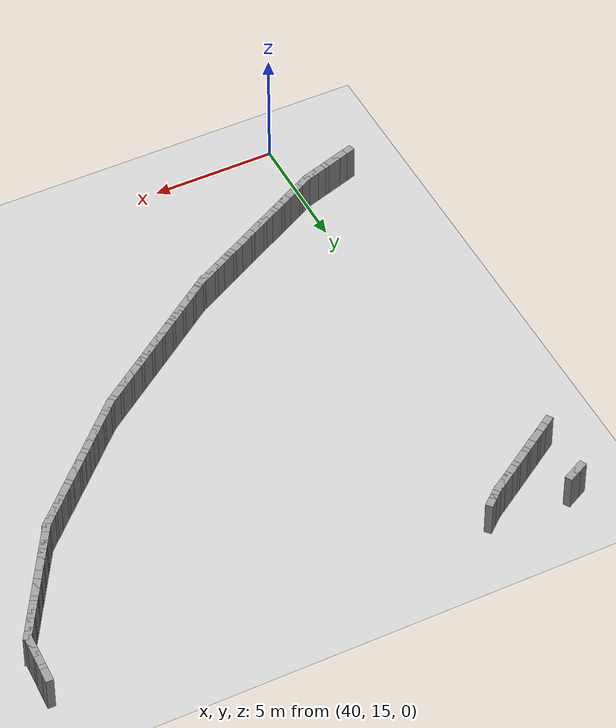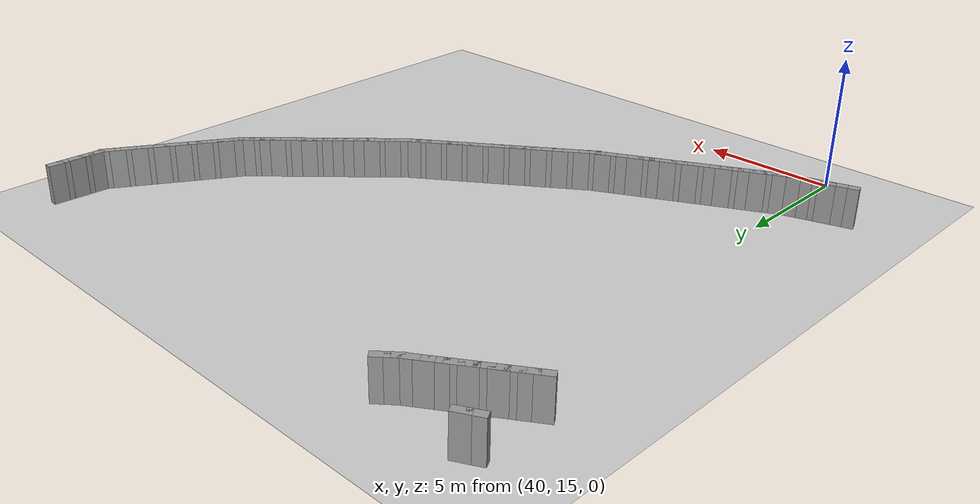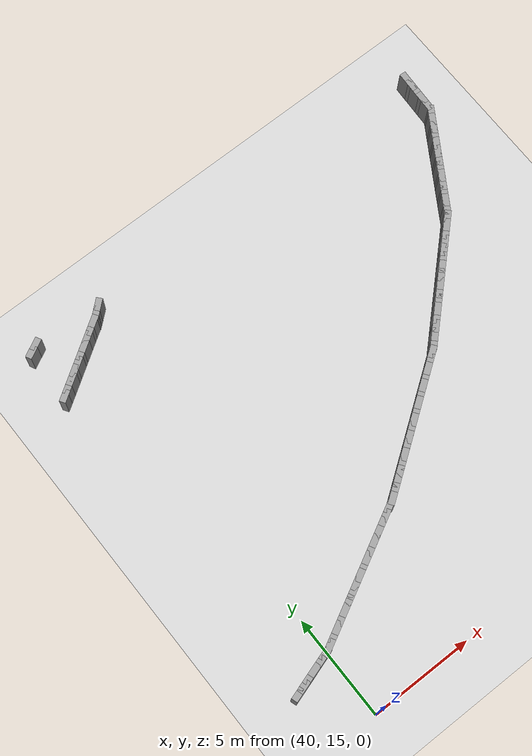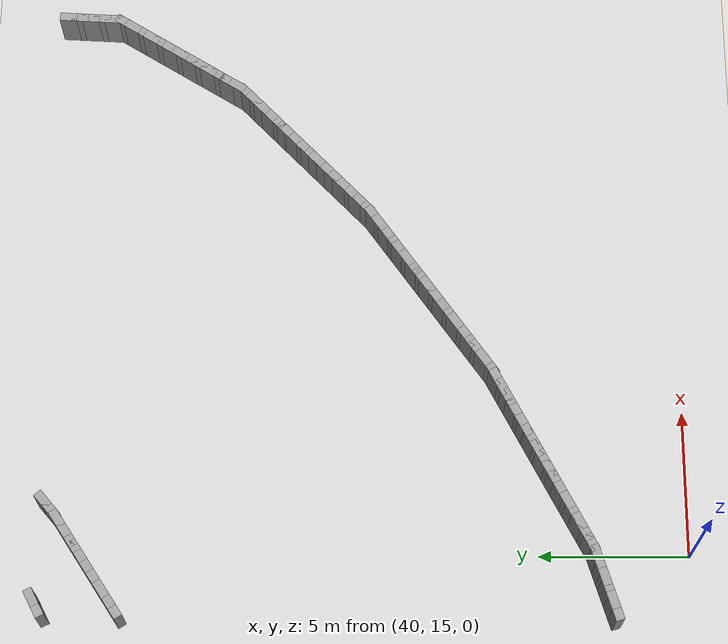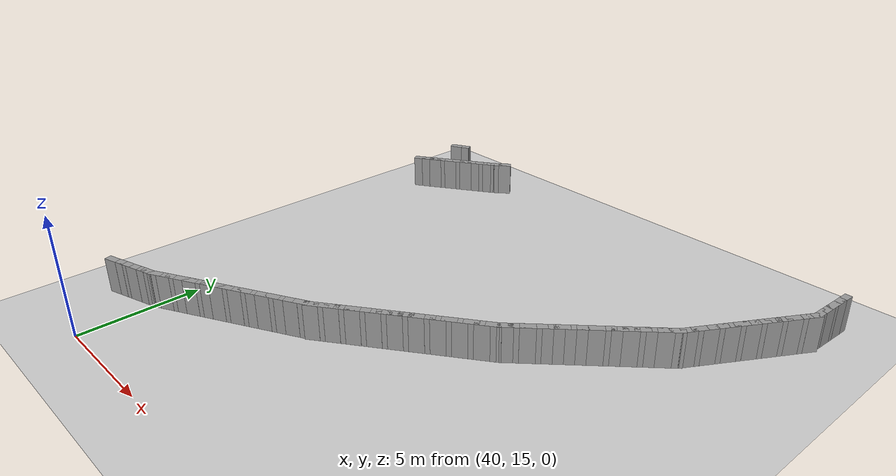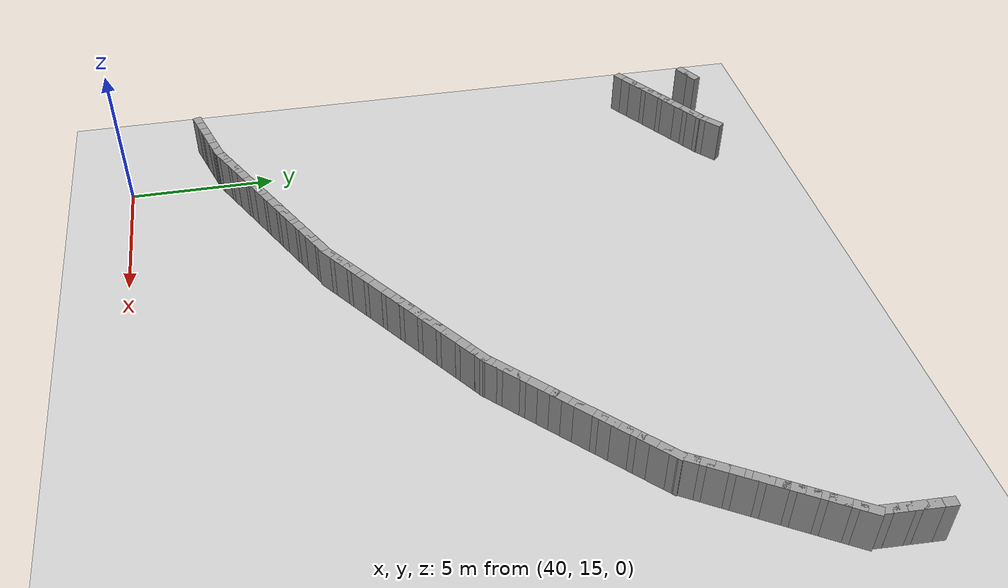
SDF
<sdf version="1.5">
 <world name="test_l_shape">
  <include><uri>model://sun</uri></include>
  <include><uri>model://ground_plane</uri></include>
  <model name="curbL_181">
   <static>true</static>
   <pose>37.872 17.605 0.750 0 0 0.304</pose>
   <link name="link">
    <collision name="col"><geometry><box><size>0.600 0.300 1.500</size></box></geometry></collision>
    <visual name="vis">
     <geometry><box><size>0.600 0.300 1.500</size></box></geometry>
     <material><ambient>0.6 0.6 0.6 1</ambient><diffuse>0.6 0.6 0.6 1</diffuse></material>
    </visual>
   </link>
  </model>
  <model name="curbL_182">
   <static>true</static>
   <pose>38.254 17.725 0.750 0 0 0.304</pose>
   <link name="link">
    <collision name="col"><geometry><box><size>0.600 0.300 1.500</size></box></geometry></collision>
    <visual name="vis">
     <geometry><box><size>0.600 0.300 1.500</size></box></geometry>
     <material><ambient>0.6 0.6 0.6 1</ambient><diffuse>0.6 0.6 0.6 1</diffuse></material>
    </visual>
   </link>
  </model>
  <model name="curbL_183">
   <static>true</static>
   <pose>38.635 17.845 0.750 0 0 0.304</pose>
   <link name="link">
    <collision name="col"><geometry><box><size>0.600 0.300 1.500</size></box></geometry></collision>
    <visual name="vis">
     <geometry><box><size>0.600 0.300 1.500</size></box></geometry>
     <material><ambient>0.6 0.6 0.6 1</ambient><diffuse>0.6 0.6 0.6 1</diffuse></material>
    </visual>
   </link>
  </model>
  <model name="curbL_184">
   <static>true</static>
   <pose>39.017 17.964 0.750 0 0 0.304</pose>
   <link name="link">
    <collision name="col"><geometry><box><size>0.600 0.300 1.500</size></box></geometry></collision>
    <visual name="vis">
     <geometry><box><size>0.600 0.300 1.500</size></box></geometry>
     <material><ambient>0.6 0.6 0.6 1</ambient><diffuse>0.6 0.6 0.6 1</diffuse></material>
    </visual>
   </link>
  </model>
  <model name="curbL_185">
   <static>true</static>
   <pose>39.399 18.084 0.750 0 0 0.304</pose>
   <link name="link">
    <collision name="col"><geometry><box><size>0.600 0.300 1.500</size></box></geometry></collision>
    <visual name="vis">
     <geometry><box><size>0.600 0.300 1.500</size></box></geometry>
     <material><ambient>0.6 0.6 0.6 1</ambient><diffuse>0.6 0.6 0.6 1</diffuse></material>
    </visual>
   </link>
  </model>
  <model name="curbL_186">
   <static>true</static>
   <pose>39.780 18.204 0.750 0 0 0.304</pose>
   <link name="link">
    <collision name="col"><geometry><box><size>0.600 0.300 1.500</size></box></geometry></collision>
    <visual name="vis">
     <geometry><box><size>0.600 0.300 1.500</size></box></geometry>
     <material><ambient>0.6 0.6 0.6 1</ambient><diffuse>0.6 0.6 0.6 1</diffuse></material>
    </visual>
   </link>
  </model>
  <model name="curbL_187">
   <static>true</static>
   <pose>40.149 18.356 0.750 0 0 0.485</pose>
   <link name="link">
    <collision name="col"><geometry><box><size>0.600 0.300 1.500</size></box></geometry></collision>
    <visual name="vis">
     <geometry><box><size>0.600 0.300 1.500</size></box></geometry>
     <material><ambient>0.6 0.6 0.6 1</ambient><diffuse>0.6 0.6 0.6 1</diffuse></material>
    </visual>
   </link>
  </model>
  <model name="curbL_188">
   <static>true</static>
   <pose>40.503 18.542 0.750 0 0 0.485</pose>
   <link name="link">
    <collision name="col"><geometry><box><size>0.600 0.300 1.500</size></box></geometry></collision>
    <visual name="vis">
     <geometry><box><size>0.600 0.300 1.500</size></box></geometry>
     <material><ambient>0.6 0.6 0.6 1</ambient><diffuse>0.6 0.6 0.6 1</diffuse></material>
    </visual>
   </link>
  </model>
  <model name="curbL_189">
   <static>true</static>
   <pose>40.856 18.729 0.750 0 0 0.485</pose>
   <link name="link">
    <collision name="col"><geometry><box><size>0.600 0.300 1.500</size></box></geometry></collision>
    <visual name="vis">
     <geometry><box><size>0.600 0.300 1.500</size></box></geometry>
     <material><ambient>0.6 0.6 0.6 1</ambient><diffuse>0.6 0.6 0.6 1</diffuse></material>
    </visual>
   </link>
  </model>
  <model name="curbL_190">
   <static>true</static>
   <pose>41.210 18.915 0.750 0 0 0.485</pose>
   <link name="link">
    <collision name="col"><geometry><box><size>0.600 0.300 1.500</size></box></geometry></collision>
    <visual name="vis">
     <geometry><box><size>0.600 0.300 1.500</size></box></geometry>
     <material><ambient>0.6 0.6 0.6 1</ambient><diffuse>0.6 0.6 0.6 1</diffuse></material>
    </visual>
   </link>
  </model>
  <model name="curbL_191">
   <static>true</static>
   <pose>41.564 19.101 0.750 0 0 0.485</pose>
   <link name="link">
    <collision name="col"><geometry><box><size>0.600 0.300 1.500</size></box></geometry></collision>
    <visual name="vis">
     <geometry><box><size>0.600 0.300 1.500</size></box></geometry>
     <material><ambient>0.6 0.6 0.6 1</ambient><diffuse>0.6 0.6 0.6 1</diffuse></material>
    </visual>
   </link>
  </model>
  <model name="curbL_192">
   <static>true</static>
   <pose>41.918 19.288 0.750 0 0 0.485</pose>
   <link name="link">
    <collision name="col"><geometry><box><size>0.600 0.300 1.500</size></box></geometry></collision>
    <visual name="vis">
     <geometry><box><size>0.600 0.300 1.500</size></box></geometry>
     <material><ambient>0.6 0.6 0.6 1</ambient><diffuse>0.6 0.6 0.6 1</diffuse></material>
    </visual>
   </link>
  </model>
  <model name="curbL_193">
   <static>true</static>
   <pose>42.272 19.474 0.750 0 0 0.485</pose>
   <link name="link">
    <collision name="col"><geometry><box><size>0.600 0.300 1.500</size></box></geometry></collision>
    <visual name="vis">
     <geometry><box><size>0.600 0.300 1.500</size></box></geometry>
     <material><ambient>0.6 0.6 0.6 1</ambient><diffuse>0.6 0.6 0.6 1</diffuse></material>
    </visual>
   </link>
  </model>
  <model name="curbL_194">
   <static>true</static>
   <pose>42.626 19.660 0.750 0 0 0.485</pose>
   <link name="link">
    <collision name="col"><geometry><box><size>0.600 0.300 1.500</size></box></geometry></collision>
    <visual name="vis">
     <geometry><box><size>0.600 0.300 1.500</size></box></geometry>
     <material><ambient>0.6 0.6 0.6 1</ambient><diffuse>0.6 0.6 0.6 1</diffuse></material>
    </visual>
   </link>
  </model>
  <model name="curbL_195">
   <static>true</static>
   <pose>42.980 19.847 0.750 0 0 0.485</pose>
   <link name="link">
    <collision name="col"><geometry><box><size>0.600 0.300 1.500</size></box></geometry></collision>
    <visual name="vis">
     <geometry><box><size>0.600 0.300 1.500</size></box></geometry>
     <material><ambient>0.6 0.6 0.6 1</ambient><diffuse>0.6 0.6 0.6 1</diffuse></material>
    </visual>
   </link>
  </model>
  <model name="curbL_196">
   <static>true</static>
   <pose>43.334 20.033 0.750 0 0 0.485</pose>
   <link name="link">
    <collision name="col"><geometry><box><size>0.600 0.300 1.500</size></box></geometry></collision>
    <visual name="vis">
     <geometry><box><size>0.600 0.300 1.500</size></box></geometry>
     <material><ambient>0.6 0.6 0.6 1</ambient><diffuse>0.6 0.6 0.6 1</diffuse></material>
    </visual>
   </link>
  </model>
  <model name="curbL_197">
   <static>true</static>
   <pose>43.688 20.220 0.750 0 0 0.485</pose>
   <link name="link">
    <collision name="col"><geometry><box><size>0.600 0.300 1.500</size></box></geometry></collision>
    <visual name="vis">
     <geometry><box><size>0.600 0.300 1.500</size></box></geometry>
     <material><ambient>0.6 0.6 0.6 1</ambient><diffuse>0.6 0.6 0.6 1</diffuse></material>
    </visual>
   </link>
  </model>
  <model name="curbL_198">
   <static>true</static>
   <pose>44.042 20.406 0.750 0 0 0.485</pose>
   <link name="link">
    <collision name="col"><geometry><box><size>0.600 0.300 1.500</size></box></geometry></collision>
    <visual name="vis">
     <geometry><box><size>0.600 0.300 1.500</size></box></geometry>
     <material><ambient>0.6 0.6 0.6 1</ambient><diffuse>0.6 0.6 0.6 1</diffuse></material>
    </visual>
   </link>
  </model>
  <model name="curbL_199">
   <static>true</static>
   <pose>44.396 20.592 0.750 0 0 0.485</pose>
   <link name="link">
    <collision name="col"><geometry><box><size>0.600 0.300 1.500</size></box></geometry></collision>
    <visual name="vis">
     <geometry><box><size>0.600 0.300 1.500</size></box></geometry>
     <material><ambient>0.6 0.6 0.6 1</ambient><diffuse>0.6 0.6 0.6 1</diffuse></material>
    </visual>
   </link>
  </model>
  <model name="curbL_200">
   <static>true</static>
   <pose>44.750 20.779 0.750 0 0 0.485</pose>
   <link name="link">
    <collision name="col"><geometry><box><size>0.600 0.300 1.500</size></box></geometry></collision>
    <visual name="vis">
     <geometry><box><size>0.600 0.300 1.500</size></box></geometry>
     <material><ambient>0.6 0.6 0.6 1</ambient><diffuse>0.6 0.6 0.6 1</diffuse></material>
    </visual>
   </link>
  </model>
  <model name="curbL_201">
   <static>true</static>
   <pose>45.104 20.965 0.750 0 0 0.485</pose>
   <link name="link">
    <collision name="col"><geometry><box><size>0.600 0.300 1.500</size></box></geometry></collision>
    <visual name="vis">
     <geometry><box><size>0.600 0.300 1.500</size></box></geometry>
     <material><ambient>0.6 0.6 0.6 1</ambient><diffuse>0.6 0.6 0.6 1</diffuse></material>
    </visual>
   </link>
  </model>
  <model name="curbL_202">
   <static>true</static>
   <pose>45.458 21.151 0.750 0 0 0.485</pose>
   <link name="link">
    <collision name="col"><geometry><box><size>0.600 0.300 1.500</size></box></geometry></collision>
    <visual name="vis">
     <geometry><box><size>0.600 0.300 1.500</size></box></geometry>
     <material><ambient>0.6 0.6 0.6 1</ambient><diffuse>0.6 0.6 0.6 1</diffuse></material>
    </visual>
   </link>
  </model>
  <model name="curbL_203">
   <static>true</static>
   <pose>45.811 21.338 0.750 0 0 0.485</pose>
   <link name="link">
    <collision name="col"><geometry><box><size>0.600 0.300 1.500</size></box></geometry></collision>
    <visual name="vis">
     <geometry><box><size>0.600 0.300 1.500</size></box></geometry>
     <material><ambient>0.6 0.6 0.6 1</ambient><diffuse>0.6 0.6 0.6 1</diffuse></material>
    </visual>
   </link>
  </model>
  <model name="curbL_204">
   <static>true</static>
   <pose>46.165 21.525 0.750 0 0 0.620</pose>
   <link name="link">
    <collision name="col"><geometry><box><size>0.600 0.300 1.500</size></box></geometry></collision>
    <visual name="vis">
     <geometry><box><size>0.600 0.300 1.500</size></box></geometry>
     <material><ambient>0.6 0.6 0.6 1</ambient><diffuse>0.6 0.6 0.6 1</diffuse></material>
    </visual>
   </link>
  </model>
  <model name="curbL_205">
   <static>true</static>
   <pose>46.490 21.758 0.750 0 0 0.620</pose>
   <link name="link">
    <collision name="col"><geometry><box><size>0.600 0.300 1.500</size></box></geometry></collision>
    <visual name="vis">
     <geometry><box><size>0.600 0.300 1.500</size></box></geometry>
     <material><ambient>0.6 0.6 0.6 1</ambient><diffuse>0.6 0.6 0.6 1</diffuse></material>
    </visual>
   </link>
  </model>
  <model name="curbL_206">
   <static>true</static>
   <pose>46.816 21.990 0.750 0 0 0.620</pose>
   <link name="link">
    <collision name="col"><geometry><box><size>0.600 0.300 1.500</size></box></geometry></collision>
    <visual name="vis">
     <geometry><box><size>0.600 0.300 1.500</size></box></geometry>
     <material><ambient>0.6 0.6 0.6 1</ambient><diffuse>0.6 0.6 0.6 1</diffuse></material>
    </visual>
   </link>
  </model>
  <model name="curbL_207">
   <static>true</static>
   <pose>47.141 22.223 0.750 0 0 0.620</pose>
   <link name="link">
    <collision name="col"><geometry><box><size>0.600 0.300 1.500</size></box></geometry></collision>
    <visual name="vis">
     <geometry><box><size>0.600 0.300 1.500</size></box></geometry>
     <material><ambient>0.6 0.6 0.6 1</ambient><diffuse>0.6 0.6 0.6 1</diffuse></material>
    </visual>
   </link>
  </model>
  <model name="curbL_208">
   <static>true</static>
   <pose>47.467 22.455 0.750 0 0 0.620</pose>
   <link name="link">
    <collision name="col"><geometry><box><size>0.600 0.300 1.500</size></box></geometry></collision>
    <visual name="vis">
     <geometry><box><size>0.600 0.300 1.500</size></box></geometry>
     <material><ambient>0.6 0.6 0.6 1</ambient><diffuse>0.6 0.6 0.6 1</diffuse></material>
    </visual>
   </link>
  </model>
  <model name="curbL_209">
   <static>true</static>
   <pose>47.792 22.688 0.750 0 0 0.620</pose>
   <link name="link">
    <collision name="col"><geometry><box><size>0.600 0.300 1.500</size></box></geometry></collision>
    <visual name="vis">
     <geometry><box><size>0.600 0.300 1.500</size></box></geometry>
     <material><ambient>0.6 0.6 0.6 1</ambient><diffuse>0.6 0.6 0.6 1</diffuse></material>
    </visual>
   </link>
  </model>
  <model name="curbL_210">
   <static>true</static>
   <pose>48.118 22.920 0.750 0 0 0.620</pose>
   <link name="link">
    <collision name="col"><geometry><box><size>0.600 0.300 1.500</size></box></geometry></collision>
    <visual name="vis">
     <geometry><box><size>0.600 0.300 1.500</size></box></geometry>
     <material><ambient>0.6 0.6 0.6 1</ambient><diffuse>0.6 0.6 0.6 1</diffuse></material>
    </visual>
   </link>
  </model>
  <model name="curbL_211">
   <static>true</static>
   <pose>48.443 23.153 0.750 0 0 0.620</pose>
   <link name="link">
    <collision name="col"><geometry><box><size>0.600 0.300 1.500</size></box></geometry></collision>
    <visual name="vis">
     <geometry><box><size>0.600 0.300 1.500</size></box></geometry>
     <material><ambient>0.6 0.6 0.6 1</ambient><diffuse>0.6 0.6 0.6 1</diffuse></material>
    </visual>
   </link>
  </model>
  <model name="curbL_212">
   <static>true</static>
   <pose>48.769 23.385 0.750 0 0 0.620</pose>
   <link name="link">
    <collision name="col"><geometry><box><size>0.600 0.300 1.500</size></box></geometry></collision>
    <visual name="vis">
     <geometry><box><size>0.600 0.300 1.500</size></box></geometry>
     <material><ambient>0.6 0.6 0.6 1</ambient><diffuse>0.6 0.6 0.6 1</diffuse></material>
    </visual>
   </link>
  </model>
  <model name="curbL_213">
   <static>true</static>
   <pose>49.094 23.618 0.750 0 0 0.620</pose>
   <link name="link">
    <collision name="col"><geometry><box><size>0.600 0.300 1.500</size></box></geometry></collision>
    <visual name="vis">
     <geometry><box><size>0.600 0.300 1.500</size></box></geometry>
     <material><ambient>0.6 0.6 0.6 1</ambient><diffuse>0.6 0.6 0.6 1</diffuse></material>
    </visual>
   </link>
  </model>
  <model name="curbL_214">
   <static>true</static>
   <pose>49.420 23.850 0.750 0 0 0.620</pose>
   <link name="link">
    <collision name="col"><geometry><box><size>0.600 0.300 1.500</size></box></geometry></collision>
    <visual name="vis">
     <geometry><box><size>0.600 0.300 1.500</size></box></geometry>
     <material><ambient>0.6 0.6 0.6 1</ambient><diffuse>0.6 0.6 0.6 1</diffuse></material>
    </visual>
   </link>
  </model>
  <model name="curbL_215">
   <static>true</static>
   <pose>49.745 24.083 0.750 0 0 0.620</pose>
   <link name="link">
    <collision name="col"><geometry><box><size>0.600 0.300 1.500</size></box></geometry></collision>
    <visual name="vis">
     <geometry><box><size>0.600 0.300 1.500</size></box></geometry>
     <material><ambient>0.6 0.6 0.6 1</ambient><diffuse>0.6 0.6 0.6 1</diffuse></material>
    </visual>
   </link>
  </model>
  <model name="curbL_216">
   <static>true</static>
   <pose>50.071 24.315 0.750 0 0 0.620</pose>
   <link name="link">
    <collision name="col"><geometry><box><size>0.600 0.300 1.500</size></box></geometry></collision>
    <visual name="vis">
     <geometry><box><size>0.600 0.300 1.500</size></box></geometry>
     <material><ambient>0.6 0.6 0.6 1</ambient><diffuse>0.6 0.6 0.6 1</diffuse></material>
    </visual>
   </link>
  </model>
  <model name="curbL_217">
   <static>true</static>
   <pose>50.396 24.548 0.750 0 0 0.620</pose>
   <link name="link">
    <collision name="col"><geometry><box><size>0.600 0.300 1.500</size></box></geometry></collision>
    <visual name="vis">
     <geometry><box><size>0.600 0.300 1.500</size></box></geometry>
     <material><ambient>0.6 0.6 0.6 1</ambient><diffuse>0.6 0.6 0.6 1</diffuse></material>
    </visual>
   </link>
  </model>
  <model name="curbL_218">
   <static>true</static>
   <pose>50.722 24.780 0.750 0 0 0.620</pose>
   <link name="link">
    <collision name="col"><geometry><box><size>0.600 0.300 1.500</size></box></geometry></collision>
    <visual name="vis">
     <geometry><box><size>0.600 0.300 1.500</size></box></geometry>
     <material><ambient>0.6 0.6 0.6 1</ambient><diffuse>0.6 0.6 0.6 1</diffuse></material>
    </visual>
   </link>
  </model>
  <model name="curbL_219">
   <static>true</static>
   <pose>51.047 25.013 0.750 0 0 0.620</pose>
   <link name="link">
    <collision name="col"><geometry><box><size>0.600 0.300 1.500</size></box></geometry></collision>
    <visual name="vis">
     <geometry><box><size>0.600 0.300 1.500</size></box></geometry>
     <material><ambient>0.6 0.6 0.6 1</ambient><diffuse>0.6 0.6 0.6 1</diffuse></material>
    </visual>
   </link>
  </model>
  <model name="curbL_220">
   <static>true</static>
   <pose>51.373 25.245 0.750 0 0 0.620</pose>
   <link name="link">
    <collision name="col"><geometry><box><size>0.600 0.300 1.500</size></box></geometry></collision>
    <visual name="vis">
     <geometry><box><size>0.600 0.300 1.500</size></box></geometry>
     <material><ambient>0.6 0.6 0.6 1</ambient><diffuse>0.6 0.6 0.6 1</diffuse></material>
    </visual>
   </link>
  </model>
  <model name="curbL_221">
   <static>true</static>
   <pose>51.698 25.478 0.750 0 0 0.620</pose>
   <link name="link">
    <collision name="col"><geometry><box><size>0.600 0.300 1.500</size></box></geometry></collision>
    <visual name="vis">
     <geometry><box><size>0.600 0.300 1.500</size></box></geometry>
     <material><ambient>0.6 0.6 0.6 1</ambient><diffuse>0.6 0.6 0.6 1</diffuse></material>
    </visual>
   </link>
  </model>
  <model name="curbL_222">
   <static>true</static>
   <pose>52.005 25.732 0.750 0 0 0.770</pose>
   <link name="link">
    <collision name="col"><geometry><box><size>0.600 0.300 1.500</size></box></geometry></collision>
    <visual name="vis">
     <geometry><box><size>0.600 0.300 1.500</size></box></geometry>
     <material><ambient>0.6 0.6 0.6 1</ambient><diffuse>0.6 0.6 0.6 1</diffuse></material>
    </visual>
   </link>
  </model>
  <model name="curbL_223">
   <static>true</static>
   <pose>52.292 26.011 0.750 0 0 0.770</pose>
   <link name="link">
    <collision name="col"><geometry><box><size>0.600 0.300 1.500</size></box></geometry></collision>
    <visual name="vis">
     <geometry><box><size>0.600 0.300 1.500</size></box></geometry>
     <material><ambient>0.6 0.6 0.6 1</ambient><diffuse>0.6 0.6 0.6 1</diffuse></material>
    </visual>
   </link>
  </model>
  <model name="curbL_224">
   <static>true</static>
   <pose>52.580 26.289 0.750 0 0 0.770</pose>
   <link name="link">
    <collision name="col"><geometry><box><size>0.600 0.300 1.500</size></box></geometry></collision>
    <visual name="vis">
     <geometry><box><size>0.600 0.300 1.500</size></box></geometry>
     <material><ambient>0.6 0.6 0.6 1</ambient><diffuse>0.6 0.6 0.6 1</diffuse></material>
    </visual>
   </link>
  </model>
  <model name="curbL_225">
   <static>true</static>
   <pose>52.867 26.568 0.750 0 0 0.770</pose>
   <link name="link">
    <collision name="col"><geometry><box><size>0.600 0.300 1.500</size></box></geometry></collision>
    <visual name="vis">
     <geometry><box><size>0.600 0.300 1.500</size></box></geometry>
     <material><ambient>0.6 0.6 0.6 1</ambient><diffuse>0.6 0.6 0.6 1</diffuse></material>
    </visual>
   </link>
  </model>
  <model name="curbL_226">
   <static>true</static>
   <pose>53.154 26.846 0.750 0 0 0.770</pose>
   <link name="link">
    <collision name="col"><geometry><box><size>0.600 0.300 1.500</size></box></geometry></collision>
    <visual name="vis">
     <geometry><box><size>0.600 0.300 1.500</size></box></geometry>
     <material><ambient>0.6 0.6 0.6 1</ambient><diffuse>0.6 0.6 0.6 1</diffuse></material>
    </visual>
   </link>
  </model>
  <model name="curbL_227">
   <static>true</static>
   <pose>53.441 27.124 0.750 0 0 0.770</pose>
   <link name="link">
    <collision name="col"><geometry><box><size>0.600 0.300 1.500</size></box></geometry></collision>
    <visual name="vis">
     <geometry><box><size>0.600 0.300 1.500</size></box></geometry>
     <material><ambient>0.6 0.6 0.6 1</ambient><diffuse>0.6 0.6 0.6 1</diffuse></material>
    </visual>
   </link>
  </model>
  <model name="curbL_228">
   <static>true</static>
   <pose>53.729 27.403 0.750 0 0 0.770</pose>
   <link name="link">
    <collision name="col"><geometry><box><size>0.600 0.300 1.500</size></box></geometry></collision>
    <visual name="vis">
     <geometry><box><size>0.600 0.300 1.500</size></box></geometry>
     <material><ambient>0.6 0.6 0.6 1</ambient><diffuse>0.6 0.6 0.6 1</diffuse></material>
    </visual>
   </link>
  </model>
  <model name="curbL_229">
   <static>true</static>
   <pose>54.016 27.681 0.750 0 0 0.770</pose>
   <link name="link">
    <collision name="col"><geometry><box><size>0.600 0.300 1.500</size></box></geometry></collision>
    <visual name="vis">
     <geometry><box><size>0.600 0.300 1.500</size></box></geometry>
     <material><ambient>0.6 0.6 0.6 1</ambient><diffuse>0.6 0.6 0.6 1</diffuse></material>
    </visual>
   </link>
  </model>
  <model name="curbL_230">
   <static>true</static>
   <pose>54.303 27.959 0.750 0 0 0.770</pose>
   <link name="link">
    <collision name="col"><geometry><box><size>0.600 0.300 1.500</size></box></geometry></collision>
    <visual name="vis">
     <geometry><box><size>0.600 0.300 1.500</size></box></geometry>
     <material><ambient>0.6 0.6 0.6 1</ambient><diffuse>0.6 0.6 0.6 1</diffuse></material>
    </visual>
   </link>
  </model>
  <model name="curbL_231">
   <static>true</static>
   <pose>54.590 28.238 0.750 0 0 0.770</pose>
   <link name="link">
    <collision name="col"><geometry><box><size>0.600 0.300 1.500</size></box></geometry></collision>
    <visual name="vis">
     <geometry><box><size>0.600 0.300 1.500</size></box></geometry>
     <material><ambient>0.6 0.6 0.6 1</ambient><diffuse>0.6 0.6 0.6 1</diffuse></material>
    </visual>
   </link>
  </model>
  <model name="curbL_232">
   <static>true</static>
   <pose>54.878 28.516 0.750 0 0 0.770</pose>
   <link name="link">
    <collision name="col"><geometry><box><size>0.600 0.300 1.500</size></box></geometry></collision>
    <visual name="vis">
     <geometry><box><size>0.600 0.300 1.500</size></box></geometry>
     <material><ambient>0.6 0.6 0.6 1</ambient><diffuse>0.6 0.6 0.6 1</diffuse></material>
    </visual>
   </link>
  </model>
  <model name="curbL_233">
   <static>true</static>
   <pose>55.165 28.794 0.750 0 0 0.770</pose>
   <link name="link">
    <collision name="col"><geometry><box><size>0.600 0.300 1.500</size></box></geometry></collision>
    <visual name="vis">
     <geometry><box><size>0.600 0.300 1.500</size></box></geometry>
     <material><ambient>0.6 0.6 0.6 1</ambient><diffuse>0.6 0.6 0.6 1</diffuse></material>
    </visual>
   </link>
  </model>
  <model name="curbL_234">
   <static>true</static>
   <pose>55.452 29.073 0.750 0 0 0.770</pose>
   <link name="link">
    <collision name="col"><geometry><box><size>0.600 0.300 1.500</size></box></geometry></collision>
    <visual name="vis">
     <geometry><box><size>0.600 0.300 1.500</size></box></geometry>
     <material><ambient>0.6 0.6 0.6 1</ambient><diffuse>0.6 0.6 0.6 1</diffuse></material>
    </visual>
   </link>
  </model>
  <model name="curbL_235">
   <static>true</static>
   <pose>55.739 29.351 0.750 0 0 0.770</pose>
   <link name="link">
    <collision name="col"><geometry><box><size>0.600 0.300 1.500</size></box></geometry></collision>
    <visual name="vis">
     <geometry><box><size>0.600 0.300 1.500</size></box></geometry>
     <material><ambient>0.6 0.6 0.6 1</ambient><diffuse>0.6 0.6 0.6 1</diffuse></material>
    </visual>
   </link>
  </model>
  <model name="curbL_236">
   <static>true</static>
   <pose>56.027 29.629 0.750 0 0 0.770</pose>
   <link name="link">
    <collision name="col"><geometry><box><size>0.600 0.300 1.500</size></box></geometry></collision>
    <visual name="vis">
     <geometry><box><size>0.600 0.300 1.500</size></box></geometry>
     <material><ambient>0.6 0.6 0.6 1</ambient><diffuse>0.6 0.6 0.6 1</diffuse></material>
    </visual>
   </link>
  </model>
  <model name="curbL_237">
   <static>true</static>
   <pose>56.314 29.908 0.750 0 0 0.770</pose>
   <link name="link">
    <collision name="col"><geometry><box><size>0.600 0.300 1.500</size></box></geometry></collision>
    <visual name="vis">
     <geometry><box><size>0.600 0.300 1.500</size></box></geometry>
     <material><ambient>0.6 0.6 0.6 1</ambient><diffuse>0.6 0.6 0.6 1</diffuse></material>
    </visual>
   </link>
  </model>
  <model name="curbL_238">
   <static>true</static>
   <pose>56.553 30.225 0.750 0 0 1.020</pose>
   <link name="link">
    <collision name="col"><geometry><box><size>0.600 0.300 1.500</size></box></geometry></collision>
    <visual name="vis">
     <geometry><box><size>0.600 0.300 1.500</size></box></geometry>
     <material><ambient>0.6 0.6 0.6 1</ambient><diffuse>0.6 0.6 0.6 1</diffuse></material>
    </visual>
   </link>
  </model>
  <model name="curbL_239">
   <static>true</static>
   <pose>56.762 30.566 0.750 0 0 1.020</pose>
   <link name="link">
    <collision name="col"><geometry><box><size>0.600 0.300 1.500</size></box></geometry></collision>
    <visual name="vis">
     <geometry><box><size>0.600 0.300 1.500</size></box></geometry>
     <material><ambient>0.6 0.6 0.6 1</ambient><diffuse>0.6 0.6 0.6 1</diffuse></material>
    </visual>
   </link>
  </model>
  <model name="curbL_240">
   <static>true</static>
   <pose>56.972 30.906 0.750 0 0 1.020</pose>
   <link name="link">
    <collision name="col"><geometry><box><size>0.600 0.300 1.500</size></box></geometry></collision>
    <visual name="vis">
     <geometry><box><size>0.600 0.300 1.500</size></box></geometry>
     <material><ambient>0.6 0.6 0.6 1</ambient><diffuse>0.6 0.6 0.6 1</diffuse></material>
    </visual>
   </link>
  </model>
  <model name="curbL_241">
   <static>true</static>
   <pose>57.181 31.247 0.750 0 0 1.020</pose>
   <link name="link">
    <collision name="col"><geometry><box><size>0.600 0.300 1.500</size></box></geometry></collision>
    <visual name="vis">
     <geometry><box><size>0.600 0.300 1.500</size></box></geometry>
     <material><ambient>0.6 0.6 0.6 1</ambient><diffuse>0.6 0.6 0.6 1</diffuse></material>
    </visual>
   </link>
  </model>
  <model name="curbL_242">
   <static>true</static>
   <pose>57.391 31.588 0.750 0 0 1.020</pose>
   <link name="link">
    <collision name="col"><geometry><box><size>0.600 0.300 1.500</size></box></geometry></collision>
    <visual name="vis">
     <geometry><box><size>0.600 0.300 1.500</size></box></geometry>
     <material><ambient>0.6 0.6 0.6 1</ambient><diffuse>0.6 0.6 0.6 1</diffuse></material>
    </visual>
   </link>
  </model>
  <model name="curbL_243">
   <static>true</static>
   <pose>57.600 31.929 0.750 0 0 1.020</pose>
   <link name="link">
    <collision name="col"><geometry><box><size>0.600 0.300 1.500</size></box></geometry></collision>
    <visual name="vis">
     <geometry><box><size>0.600 0.300 1.500</size></box></geometry>
     <material><ambient>0.6 0.6 0.6 1</ambient><diffuse>0.6 0.6 0.6 1</diffuse></material>
    </visual>
   </link>
  </model>
  <model name="curbL_244">
   <static>true</static>
   <pose>57.810 32.269 0.750 0 0 1.020</pose>
   <link name="link">
    <collision name="col"><geometry><box><size>0.600 0.300 1.500</size></box></geometry></collision>
    <visual name="vis">
     <geometry><box><size>0.600 0.300 1.500</size></box></geometry>
     <material><ambient>0.6 0.6 0.6 1</ambient><diffuse>0.6 0.6 0.6 1</diffuse></material>
    </visual>
   </link>
  </model>
  <model name="curbL_245">
   <static>true</static>
   <pose>58.019 32.610 0.750 0 0 1.020</pose>
   <link name="link">
    <collision name="col"><geometry><box><size>0.600 0.300 1.500</size></box></geometry></collision>
    <visual name="vis">
     <geometry><box><size>0.600 0.300 1.500</size></box></geometry>
     <material><ambient>0.6 0.6 0.6 1</ambient><diffuse>0.6 0.6 0.6 1</diffuse></material>
    </visual>
   </link>
  </model>
  <model name="curbL_246">
   <static>true</static>
   <pose>58.229 32.951 0.750 0 0 1.020</pose>
   <link name="link">
    <collision name="col"><geometry><box><size>0.600 0.300 1.500</size></box></geometry></collision>
    <visual name="vis">
     <geometry><box><size>0.600 0.300 1.500</size></box></geometry>
     <material><ambient>0.6 0.6 0.6 1</ambient><diffuse>0.6 0.6 0.6 1</diffuse></material>
    </visual>
   </link>
  </model>
  <model name="curbL_247">
   <static>true</static>
   <pose>58.438 33.292 0.750 0 0 1.020</pose>
   <link name="link">
    <collision name="col"><geometry><box><size>0.600 0.300 1.500</size></box></geometry></collision>
    <visual name="vis">
     <geometry><box><size>0.600 0.300 1.500</size></box></geometry>
     <material><ambient>0.6 0.6 0.6 1</ambient><diffuse>0.6 0.6 0.6 1</diffuse></material>
    </visual>
   </link>
  </model>
  <model name="curbL_248">
   <static>true</static>
   <pose>58.648 33.632 0.750 0 0 1.020</pose>
   <link name="link">
    <collision name="col"><geometry><box><size>0.600 0.300 1.500</size></box></geometry></collision>
    <visual name="vis">
     <geometry><box><size>0.600 0.300 1.500</size></box></geometry>
     <material><ambient>0.6 0.6 0.6 1</ambient><diffuse>0.6 0.6 0.6 1</diffuse></material>
    </visual>
   </link>
  </model>
  <model name="curbL_249">
   <static>true</static>
   <pose>58.857 33.973 0.750 0 0 1.020</pose>
   <link name="link">
    <collision name="col"><geometry><box><size>0.600 0.300 1.500</size></box></geometry></collision>
    <visual name="vis">
     <geometry><box><size>0.600 0.300 1.500</size></box></geometry>
     <material><ambient>0.6 0.6 0.6 1</ambient><diffuse>0.6 0.6 0.6 1</diffuse></material>
    </visual>
   </link>
  </model>
  <model name="curbL_250">
   <static>true</static>
   <pose>59.067 34.314 0.750 0 0 1.020</pose>
   <link name="link">
    <collision name="col"><geometry><box><size>0.600 0.300 1.500</size></box></geometry></collision>
    <visual name="vis">
     <geometry><box><size>0.600 0.300 1.500</size></box></geometry>
     <material><ambient>0.6 0.6 0.6 1</ambient><diffuse>0.6 0.6 0.6 1</diffuse></material>
    </visual>
   </link>
  </model>
  <model name="curbL_251">
   <static>true</static>
   <pose>59.150 34.694 0.750 0 0 1.520</pose>
   <link name="link">
    <collision name="col"><geometry><box><size>0.600 0.300 1.500</size></box></geometry></collision>
    <visual name="vis">
     <geometry><box><size>0.600 0.300 1.500</size></box></geometry>
     <material><ambient>0.6 0.6 0.6 1</ambient><diffuse>0.6 0.6 0.6 1</diffuse></material>
    </visual>
   </link>
  </model>
  <model name="curbL_252">
   <static>true</static>
   <pose>59.171 35.093 0.750 0 0 1.520</pose>
   <link name="link">
    <collision name="col"><geometry><box><size>0.600 0.300 1.500</size></box></geometry></collision>
    <visual name="vis">
     <geometry><box><size>0.600 0.300 1.500</size></box></geometry>
     <material><ambient>0.6 0.6 0.6 1</ambient><diffuse>0.6 0.6 0.6 1</diffuse></material>
    </visual>
   </link>
  </model>
  <model name="curbL_253">
   <static>true</static>
   <pose>59.191 35.493 0.750 0 0 1.520</pose>
   <link name="link">
    <collision name="col"><geometry><box><size>0.600 0.300 1.500</size></box></geometry></collision>
    <visual name="vis">
     <geometry><box><size>0.600 0.300 1.500</size></box></geometry>
     <material><ambient>0.6 0.6 0.6 1</ambient><diffuse>0.6 0.6 0.6 1</diffuse></material>
    </visual>
   </link>
  </model>
  <model name="curbL_254">
   <static>true</static>
   <pose>59.212 35.892 0.750 0 0 1.520</pose>
   <link name="link">
    <collision name="col"><geometry><box><size>0.600 0.300 1.500</size></box></geometry></collision>
    <visual name="vis">
     <geometry><box><size>0.600 0.300 1.500</size></box></geometry>
     <material><ambient>0.6 0.6 0.6 1</ambient><diffuse>0.6 0.6 0.6 1</diffuse></material>
    </visual>
   </link>
  </model>
  <model name="curbL_255">
   <static>true</static>
   <pose>59.232 36.292 0.750 0 0 1.520</pose>
   <link name="link">
    <collision name="col"><geometry><box><size>0.600 0.300 1.500</size></box></geometry></collision>
    <visual name="vis">
     <geometry><box><size>0.600 0.300 1.500</size></box></geometry>
     <material><ambient>0.6 0.6 0.6 1</ambient><diffuse>0.6 0.6 0.6 1</diffuse></material>
    </visual>
   </link>
  </model>
  <model name="curbR_30">
   <static>true</static>
   <pose>37.930 36.298 0.750 0 0 0.477</pose>
   <link name="link">
    <collision name="col"><geometry><box><size>0.600 0.300 1.500</size></box></geometry></collision>
    <visual name="vis">
     <geometry><box><size>0.600 0.300 1.500</size></box></geometry>
     <material><ambient>0.6 0.6 0.6 1</ambient><diffuse>0.6 0.6 0.6 1</diffuse></material>
    </visual>
   </link>
  </model>
  <model name="curbR_31">
   <static>true</static>
   <pose>38.285 36.482 0.750 0 0 0.477</pose>
   <link name="link">
    <collision name="col"><geometry><box><size>0.600 0.300 1.500</size></box></geometry></collision>
    <visual name="vis">
     <geometry><box><size>0.600 0.300 1.500</size></box></geometry>
     <material><ambient>0.6 0.6 0.6 1</ambient><diffuse>0.6 0.6 0.6 1</diffuse></material>
    </visual>
   </link>
  </model>
  <model name="curbR_56">
   <static>true</static>
   <pose>41.534 36.267 0.750 0 0 -2.432</pose>
   <link name="link">
    <collision name="col"><geometry><box><size>0.600 0.300 1.500</size></box></geometry></collision>
    <visual name="vis">
     <geometry><box><size>0.600 0.300 1.500</size></box></geometry>
     <material><ambient>0.6 0.6 0.6 1</ambient><diffuse>0.6 0.6 0.6 1</diffuse></material>
    </visual>
   </link>
  </model>
  <model name="curbR_57">
   <static>true</static>
   <pose>41.230 36.006 0.750 0 0 -2.432</pose>
   <link name="link">
    <collision name="col"><geometry><box><size>0.600 0.300 1.500</size></box></geometry></collision>
    <visual name="vis">
     <geometry><box><size>0.600 0.300 1.500</size></box></geometry>
     <material><ambient>0.6 0.6 0.6 1</ambient><diffuse>0.6 0.6 0.6 1</diffuse></material>
    </visual>
   </link>
  </model>
  <model name="curbR_58">
   <static>true</static>
   <pose>40.907 35.772 0.750 0 0 -2.562</pose>
   <link name="link">
    <collision name="col"><geometry><box><size>0.600 0.300 1.500</size></box></geometry></collision>
    <visual name="vis">
     <geometry><box><size>0.600 0.300 1.500</size></box></geometry>
     <material><ambient>0.6 0.6 0.6 1</ambient><diffuse>0.6 0.6 0.6 1</diffuse></material>
    </visual>
   </link>
  </model>
  <model name="curbR_59">
   <static>true</static>
   <pose>40.572 35.553 0.750 0 0 -2.562</pose>
   <link name="link">
    <collision name="col"><geometry><box><size>0.600 0.300 1.500</size></box></geometry></collision>
    <visual name="vis">
     <geometry><box><size>0.600 0.300 1.500</size></box></geometry>
     <material><ambient>0.6 0.6 0.6 1</ambient><diffuse>0.6 0.6 0.6 1</diffuse></material>
    </visual>
   </link>
  </model>
  <model name="curbR_60">
   <static>true</static>
   <pose>40.238 35.334 0.750 0 0 -2.562</pose>
   <link name="link">
    <collision name="col"><geometry><box><size>0.600 0.300 1.500</size></box></geometry></collision>
    <visual name="vis">
     <geometry><box><size>0.600 0.300 1.500</size></box></geometry>
     <material><ambient>0.6 0.6 0.6 1</ambient><diffuse>0.6 0.6 0.6 1</diffuse></material>
    </visual>
   </link>
  </model>
  <model name="curbR_61">
   <static>true</static>
   <pose>39.903 35.114 0.750 0 0 -2.562</pose>
   <link name="link">
    <collision name="col"><geometry><box><size>0.600 0.300 1.500</size></box></geometry></collision>
    <visual name="vis">
     <geometry><box><size>0.600 0.300 1.500</size></box></geometry>
     <material><ambient>0.6 0.6 0.6 1</ambient><diffuse>0.6 0.6 0.6 1</diffuse></material>
    </visual>
   </link>
  </model>
  <model name="curbR_62">
   <static>true</static>
   <pose>39.568 34.895 0.750 0 0 -2.562</pose>
   <link name="link">
    <collision name="col"><geometry><box><size>0.600 0.300 1.500</size></box></geometry></collision>
    <visual name="vis">
     <geometry><box><size>0.600 0.300 1.500</size></box></geometry>
     <material><ambient>0.6 0.6 0.6 1</ambient><diffuse>0.6 0.6 0.6 1</diffuse></material>
    </visual>
   </link>
  </model>
  <model name="curbR_63">
   <static>true</static>
   <pose>39.234 34.676 0.750 0 0 -2.562</pose>
   <link name="link">
    <collision name="col"><geometry><box><size>0.600 0.300 1.500</size></box></geometry></collision>
    <visual name="vis">
     <geometry><box><size>0.600 0.300 1.500</size></box></geometry>
     <material><ambient>0.6 0.6 0.6 1</ambient><diffuse>0.6 0.6 0.6 1</diffuse></material>
    </visual>
   </link>
  </model>
  <model name="curbR_64">
   <static>true</static>
   <pose>38.899 34.457 0.750 0 0 -2.562</pose>
   <link name="link">
    <collision name="col"><geometry><box><size>0.600 0.300 1.500</size></box></geometry></collision>
    <visual name="vis">
     <geometry><box><size>0.600 0.300 1.500</size></box></geometry>
     <material><ambient>0.6 0.6 0.6 1</ambient><diffuse>0.6 0.6 0.6 1</diffuse></material>
    </visual>
   </link>
  </model>
  <model name="curbR_65">
   <static>true</static>
   <pose>38.565 34.238 0.750 0 0 -2.562</pose>
   <link name="link">
    <collision name="col"><geometry><box><size>0.600 0.300 1.500</size></box></geometry></collision>
    <visual name="vis">
     <geometry><box><size>0.600 0.300 1.500</size></box></geometry>
     <material><ambient>0.6 0.6 0.6 1</ambient><diffuse>0.6 0.6 0.6 1</diffuse></material>
    </visual>
   </link>
  </model>
  <model name="curbR_66">
   <static>true</static>
   <pose>38.230 34.019 0.750 0 0 -2.562</pose>
   <link name="link">
    <collision name="col"><geometry><box><size>0.600 0.300 1.500</size></box></geometry></collision>
    <visual name="vis">
     <geometry><box><size>0.600 0.300 1.500</size></box></geometry>
     <material><ambient>0.6 0.6 0.6 1</ambient><diffuse>0.6 0.6 0.6 1</diffuse></material>
    </visual>
   </link>
  </model>
  <model name="curbR_67">
   <static>true</static>
   <pose>37.895 33.800 0.750 0 0 -2.562</pose>
   <link name="link">
    <collision name="col"><geometry><box><size>0.600 0.300 1.500</size></box></geometry></collision>
    <visual name="vis">
     <geometry><box><size>0.600 0.300 1.500</size></box></geometry>
     <material><ambient>0.6 0.6 0.6 1</ambient><diffuse>0.6 0.6 0.6 1</diffuse></material>
    </visual>
   </link>
  </model>
 </world>
</sdf>
